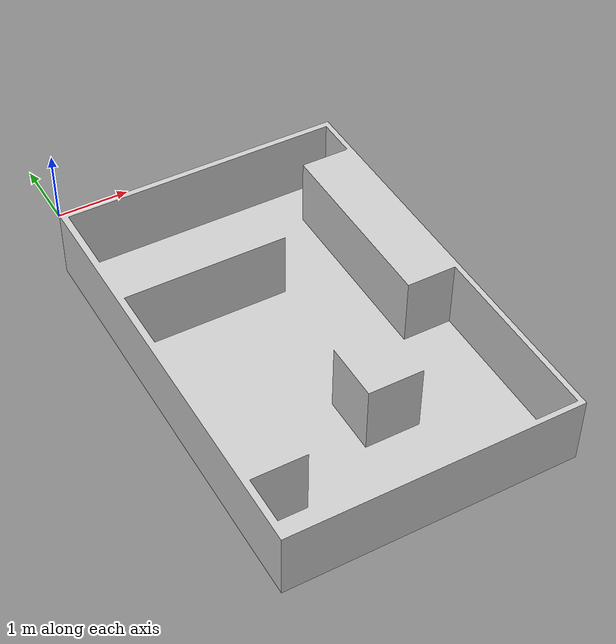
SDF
<?xml version='1.0'?>
<sdf version="1.6">
  <model name="t1_field">
    <pose>0 0 0 3.14 0 0</pose>
    <static>true</static>
    <link name="link">
      <collision name="collision">
        <geometry>
          <mesh>
	    <uri>model://t1_field/meshes/t1_field.STL</uri>
            <scale>0.001 0.001 0.001</scale>
          </mesh>
        </geometry>
      </collision>
      <visual name="visual">
        <geometry>
          <mesh>
            <uri>model://t1_field/meshes/t1_field.STL</uri>
            <scale>0.001 0.001 0.001</scale>
          </mesh>
        </geometry>
	<material> <!--  material -->
	  <ambient>0.1 0.1 0.1 1</ambient>
          <diffuse>0.8 0.8 0.8 1</diffuse>
          <specular>0 0 0 0</specular>
          <emissive>0 0 0 1</emissive>
	</material> <!-- End  material -->
      </visual>
    </link>
  </model>
</sdf>
